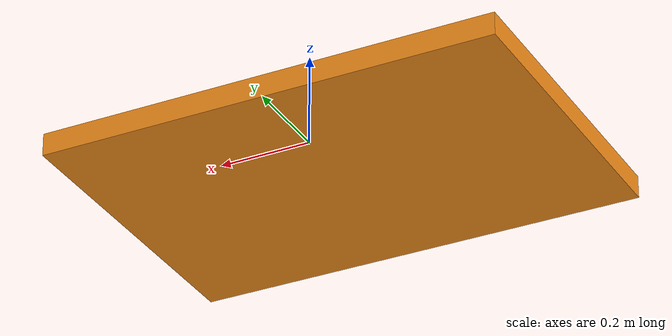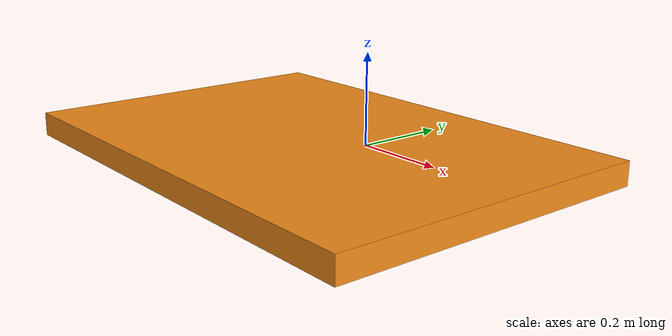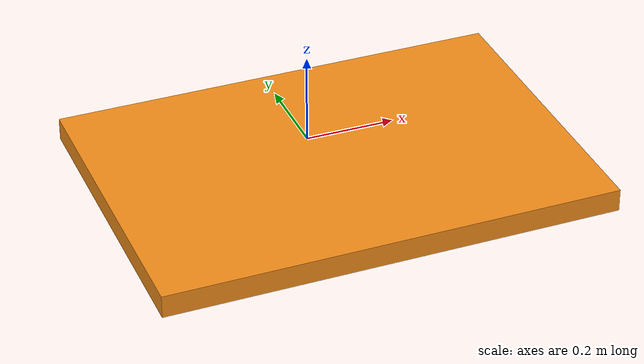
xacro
<?xml version="1.0"?>
<!-- Revolute-Revolute Manipulator -->
<robot name="table" xmlns:xacro="http://www.ros.org/wiki/xacro">

  <!-- Constants for robot dimensions -->
  <xacro:property name="M_PI" value="3.1415926535897931"/>
  <xacro:property name="mass" value="0.9" /> <!-- arbitrary value for mass -->
  <xacro:property name="length" value="1.0" />
  <xacro:property name="width" value="0.4" />
  <xacro:property name="height" value="0.05" />

  <xacro:include filename="$(find object_description)/urdf/materials.xacro" />

  <link name="world"/>

  <joint name="world_table" type="fixed">
    <parent link="world"/>
    <child link="table"/>
  </joint>

  <!-- table -->
  <link name="table">

    <visual>
      <origin xyz="0 -0.15 ${height/2}" rpy="0 0 0"/>
      <geometry>
	<box size="${length} ${width+0.3} ${height}"/>
      </geometry>
      <material name="orange"/>
    </visual>

    <collision>
      <origin xyz="0 0 ${height/2}" rpy="0 0 0"/>
      <geometry>
	<box size="${length} ${width} ${height}"/>
      </geometry>
    </collision>

    <inertial>
      <origin xyz="0 0 ${height/2}" rpy="0 0 0"/>
      <mass value="${mass}"/>
      <inertia
	  ixx="${mass / 12.0 * (width*width + height*height)}" ixy="0.0" ixz="0.0"
	  iyy="${mass / 12.0 * (height*height + length*length)}" iyz="0.0"
	  izz="${mass / 12.0 * (length*length + width*width)}"/>
    </inertial>
  </link>

  <gazebo reference="table">
    <material>Gazebo/Grey</material>
	<mu1>2000</mu1>
    <mu2>1000</mu2>
    <kp>10000000.0</kp>
    <kd>1.0</kd>
  </gazebo>

</robot>
